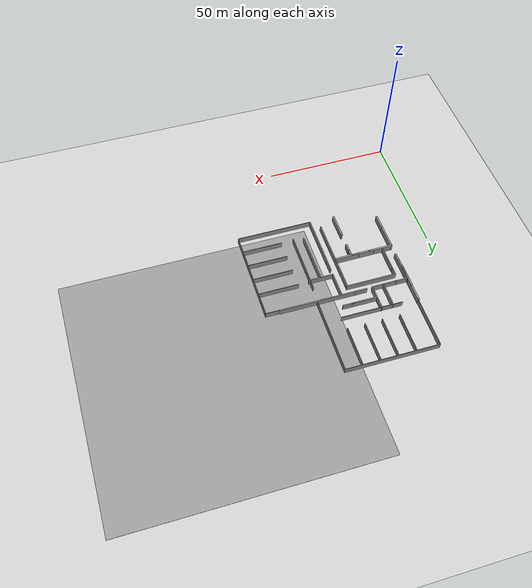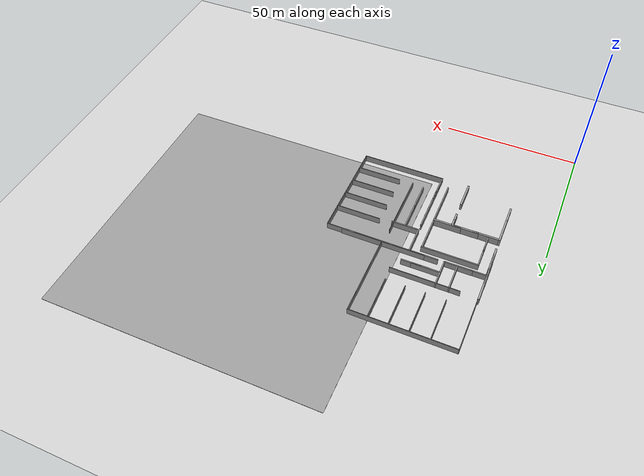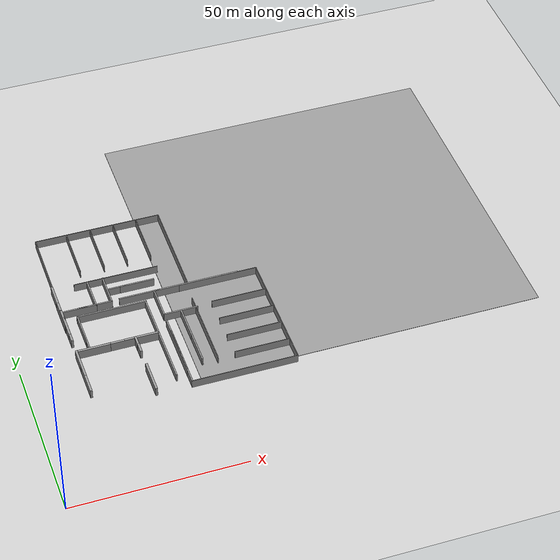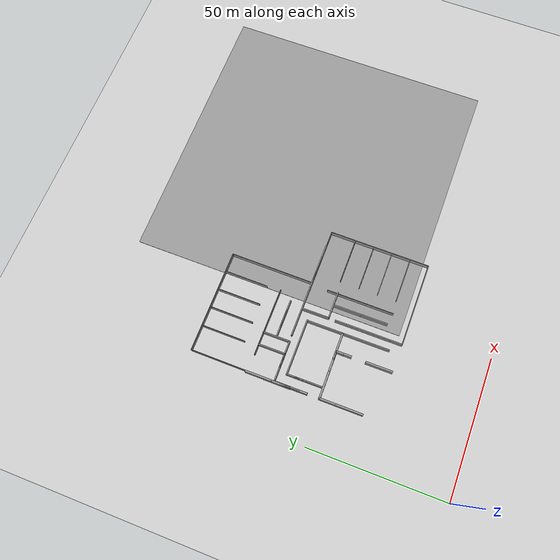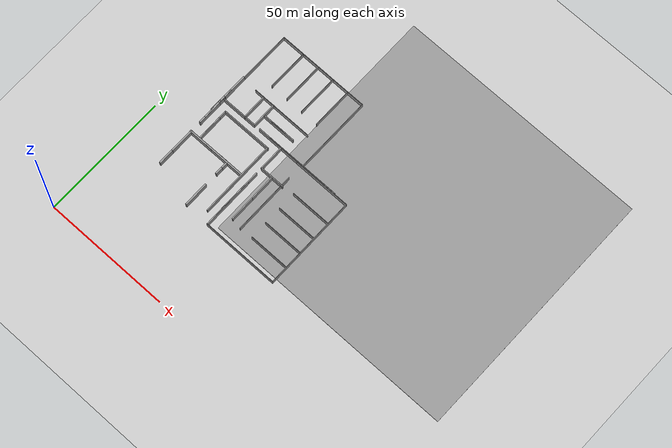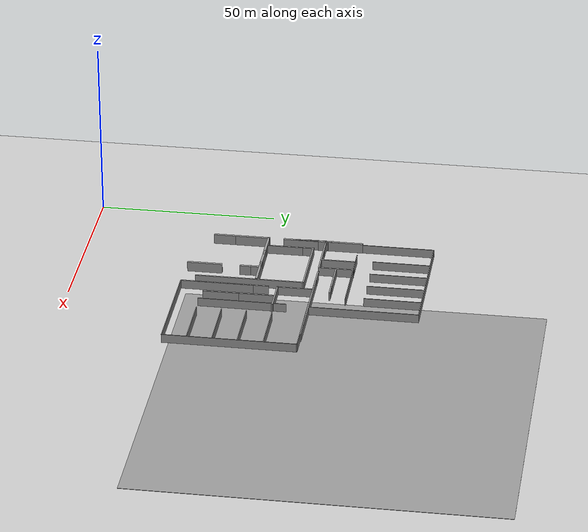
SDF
<sdf version="1.7">
 <world name="default">
  <model name="ground_plane">
   <static>1</static>
   <link name="link">
    <collision name="collision">
     <geometry><plane><normal>0 0 1</normal><size>100 100</size></plane></geometry>
     <surface><friction><ode><mu>100</mu><mu2>50</mu2></ode></friction></surface>
    </collision>
    <visual name="visual">
     <cast_shadows>0</cast_shadows>
     <geometry><plane><normal>0 0 1</normal><size>100 100</size></plane></geometry>
     <material>
      <script><uri>file://media/materials/scripts/gazebo.material</uri><name>Gazebo/Grey</name></script>
     </material>
    </visual>
   </link>
  </model>
  <model name="ground_plane_2">
   <static>1</static>
   <link name="link">
    <collision name="collision">
     <geometry><plane><normal>0 0 1</normal><size>100 100</size></plane></geometry>
     <surface>
      <contact><collide_bitmask>65535</collide_bitmask></contact>
      <friction><ode><mu>100</mu><mu2>50</mu2></ode></friction>
     </surface>
    </collision>
    <visual name="visual">
     <cast_shadows>0</cast_shadows>
     <geometry><plane><normal>0 0 1</normal><size>100 100</size></plane></geometry>
     <material>
      <script><uri>file://media/materials/scripts/gazebo.material</uri><name>Gazebo/Grey</name></script>
     </material>
    </visual>
   </link>
   <pose>96.4085 82.3703 0 0 -0 0</pose>
  </model>
  <model name="grey_wall_hou_clone_clone_3_clone_0_clone_1">
   <link name="link">
    <pose>0 0 1.37589 0 -0 0</pose>
    <inertial>
     <inertia><ixx>0</ixx><ixy>0</ixy><ixz>0</ixz><iyy>0</iyy><iyz>0</iyz><izz>0</izz></inertia>
     <mass>0</mass>
    </inertial>
    <visual name="visual">
     <cast_shadows>0</cast_shadows>
     <geometry><box><size>9.82221 0.642976 2.8</size></box></geometry>
     <material>
      <script>
       <uri>model://grey_wall/materials/scripts</uri>
       <uri>model://grey_wall/materials/textures</uri>
       <name>vrc/grey_wall</name>
      </script>
      <shader type="pixel"><normal_map>__default__</normal_map></shader>
      <ambient>1 1 1 1</ambient>
      <diffuse>1 1 1 1</diffuse>
      <specular>0 0 0 1</specular>
      <emissive>0 0 0 1</emissive>
     </material>
    </visual>
    <collision name="collision">
     <geometry><box><size>9.82221 0.642976 2.8</size></box></geometry>
     <surface>
      <friction>
       <ode><mu>1</mu><mu2>1</mu2><fdir1>0 0 0</fdir1><slip1>0</slip1><slip2>0</slip2></ode>
       <torsional>
        <coefficient>1</coefficient>
        <patch_radius>0</patch_radius>
        <surface_radius>0</surface_radius>
        <use_patch_radius>1</use_patch_radius>
        <ode><slip>0</slip></ode>
       </torsional>
      </friction>
      <bounce><restitution_coefficient>0</restitution_coefficient><threshold>1e+06</threshold></bounce>
      <contact>
       <collide_without_contact>0</collide_without_contact>
       <collide_without_contact_bitmask>1</collide_without_contact_bitmask>
       <collide_bitmask>1</collide_bitmask>
       <ode>
        <soft_cfm>0</soft_cfm>
        <soft_erp>0.2</soft_erp>
        <kp>1e+13</kp>
        <kd>1</kd>
        <max_vel>0.01</max_vel>
        <min_depth>0</min_depth>
       </ode>
       <bullet>
        <split_impulse>1</split_impulse>
        <split_impulse_penetration_threshold>-0.01</split_impulse_penetration_threshold>
        <soft_cfm>0</soft_cfm>
        <soft_erp>0.2</soft_erp>
        <kp>1e+13</kp>
        <kd>1</kd>
       </bullet>
      </contact>
     </surface>
    </collision>
   </link>
   <static>1</static>
   <pose>33.2826 35.5332 0 0 0 -1.56855</pose>
  </model>
  <model name="grey_wall_hou_clone_clone_3_clone_0_clone_1_clone_0">
   <link name="link">
    <pose>0 0 1.37589 0 -0 0</pose>
    <inertial>
     <inertia><ixx>0</ixx><ixy>0</ixy><ixz>0</ixz><iyy>0</iyy><iyz>0</iyz><izz>0</izz></inertia>
     <mass>0</mass>
    </inertial>
    <visual name="visual">
     <cast_shadows>0</cast_shadows>
     <geometry><box><size>9.82221 0.642976 2.8</size></box></geometry>
     <material>
      <script>
       <uri>model://grey_wall/materials/scripts</uri>
       <uri>model://grey_wall/materials/textures</uri>
       <name>vrc/grey_wall</name>
      </script>
      <shader type="pixel"><normal_map>__default__</normal_map></shader>
      <ambient>1 1 1 1</ambient>
      <diffuse>1 1 1 1</diffuse>
      <specular>0 0 0 1</specular>
      <emissive>0 0 0 1</emissive>
     </material>
    </visual>
    <collision name="collision">
     <geometry><box><size>9.82221 0.642976 2.8</size></box></geometry>
     <surface>
      <friction>
       <ode><mu>1</mu><mu2>1</mu2><fdir1>0 0 0</fdir1><slip1>0</slip1><slip2>0</slip2></ode>
       <torsional>
        <coefficient>1</coefficient>
        <patch_radius>0</patch_radius>
        <surface_radius>0</surface_radius>
        <use_patch_radius>1</use_patch_radius>
        <ode><slip>0</slip></ode>
       </torsional>
      </friction>
      <bounce><restitution_coefficient>0</restitution_coefficient><threshold>1e+06</threshold></bounce>
      <contact>
       <collide_without_contact>0</collide_without_contact>
       <collide_without_contact_bitmask>1</collide_without_contact_bitmask>
       <collide_bitmask>1</collide_bitmask>
       <ode>
        <soft_cfm>0</soft_cfm>
        <soft_erp>0.2</soft_erp>
        <kp>1e+13</kp>
        <kd>1</kd>
        <max_vel>0.01</max_vel>
        <min_depth>0</min_depth>
       </ode>
       <bullet>
        <split_impulse>1</split_impulse>
        <split_impulse_penetration_threshold>-0.01</split_impulse_penetration_threshold>
        <soft_cfm>0</soft_cfm>
        <soft_erp>0.2</soft_erp>
        <kp>1e+13</kp>
        <kd>1</kd>
       </bullet>
      </contact>
     </surface>
    </collision>
   </link>
   <static>1</static>
   <pose>16.3465 60.2633 0 0 0 -1.56855</pose>
  </model>
  <model name="grey_wall_hou_clone_clone_3_clone_0_clone_1_clone_2">
   <link name="link">
    <pose>0 0 1.37589 0 -0 0</pose>
    <inertial>
     <inertia><ixx>0</ixx><ixy>0</ixy><ixz>0</ixz><iyy>0</iyy><iyz>0</iyz><izz>0</izz></inertia>
     <mass>0</mass>
    </inertial>
    <visual name="visual">
     <cast_shadows>0</cast_shadows>
     <geometry><box><size>9.82221 0.642976 2.8</size></box></geometry>
     <material>
      <script>
       <uri>model://grey_wall/materials/scripts</uri>
       <uri>model://grey_wall/materials/textures</uri>
       <name>vrc/grey_wall</name>
      </script>
      <shader type="pixel"><normal_map>__default__</normal_map></shader>
      <ambient>1 1 1 1</ambient>
      <diffuse>1 1 1 1</diffuse>
      <specular>0 0 0 1</specular>
      <emissive>0 0 0 1</emissive>
     </material>
    </visual>
    <collision name="collision">
     <geometry><box><size>9.82221 0.642976 2.8</size></box></geometry>
     <surface>
      <friction>
       <ode><mu>1</mu><mu2>1</mu2><fdir1>0 0 0</fdir1><slip1>0</slip1><slip2>0</slip2></ode>
       <torsional>
        <coefficient>1</coefficient>
        <patch_radius>0</patch_radius>
        <surface_radius>0</surface_radius>
        <use_patch_radius>1</use_patch_radius>
        <ode><slip>0</slip></ode>
       </torsional>
      </friction>
      <bounce><restitution_coefficient>0</restitution_coefficient><threshold>1e+06</threshold></bounce>
      <contact>
       <collide_without_contact>0</collide_without_contact>
       <collide_without_contact_bitmask>1</collide_without_contact_bitmask>
       <collide_bitmask>1</collide_bitmask>
       <ode>
        <soft_cfm>0</soft_cfm>
        <soft_erp>0.2</soft_erp>
        <kp>1e+13</kp>
        <kd>1</kd>
        <max_vel>0.01</max_vel>
        <min_depth>0</min_depth>
       </ode>
       <bullet>
        <split_impulse>1</split_impulse>
        <split_impulse_penetration_threshold>-0.01</split_impulse_penetration_threshold>
        <soft_cfm>0</soft_cfm>
        <soft_erp>0.2</soft_erp>
        <kp>1e+13</kp>
        <kd>1</kd>
       </bullet>
      </contact>
     </surface>
    </collision>
   </link>
   <static>1</static>
   <pose>16.3889 46.4515 0 0 0 -1.56855</pose>
  </model>
  <model name="grey_wall_hou_clone_clone_clone_4_clone_clone_0_clone">
   <link name="link">
    <pose>0 0 1.37589 0 -0 0</pose>
    <inertial>
     <inertia><ixx>0</ixx><ixy>0</ixy><ixz>0</ixz><iyy>0</iyy><iyz>0</iyz><izz>0</izz></inertia>
     <mass>0</mass>
    </inertial>
    <visual name="visual">
     <cast_shadows>0</cast_shadows>
     <geometry><box><size>9.82221 0.642976 2.8</size></box></geometry>
     <material>
      <script>
       <uri>model://grey_wall/materials/scripts</uri>
       <uri>model://grey_wall/materials/textures</uri>
       <name>vrc/grey_wall</name>
      </script>
      <shader type="pixel"><normal_map>__default__</normal_map></shader>
      <ambient>1 1 1 1</ambient>
      <diffuse>1 1 1 1</diffuse>
      <specular>0 0 0 1</specular>
      <emissive>0 0 0 1</emissive>
     </material>
    </visual>
    <collision name="collision">
     <geometry><box><size>9.82221 0.642976 2.8</size></box></geometry>
     <surface>
      <friction>
       <ode><mu>1</mu><mu2>1</mu2><fdir1>0 0 0</fdir1><slip1>0</slip1><slip2>0</slip2></ode>
       <torsional>
        <coefficient>1</coefficient>
        <patch_radius>0</patch_radius>
        <surface_radius>0</surface_radius>
        <use_patch_radius>1</use_patch_radius>
        <ode><slip>0</slip></ode>
       </torsional>
      </friction>
      <bounce><restitution_coefficient>0</restitution_coefficient><threshold>1e+06</threshold></bounce>
      <contact>
       <collide_without_contact>0</collide_without_contact>
       <collide_without_contact_bitmask>1</collide_without_contact_bitmask>
       <collide_bitmask>1</collide_bitmask>
       <ode>
        <soft_cfm>0</soft_cfm>
        <soft_erp>0.2</soft_erp>
        <kp>1e+13</kp>
        <kd>1</kd>
        <max_vel>0.01</max_vel>
        <min_depth>0</min_depth>
       </ode>
       <bullet>
        <split_impulse>1</split_impulse>
        <split_impulse_penetration_threshold>-0.01</split_impulse_penetration_threshold>
        <soft_cfm>0</soft_cfm>
        <soft_erp>0.2</soft_erp>
        <kp>1e+13</kp>
        <kd>1</kd>
       </bullet>
      </contact>
     </surface>
    </collision>
   </link>
   <static>1</static>
   <pose>21.103 51.0163 0 0 -0 0</pose>
  </model>
  <model name="grey_wall_hou_clone_clone_clone_4_clone_clone_0_clone_0">
   <link name="link">
    <pose>0 0 1.37589 0 -0 0</pose>
    <inertial>
     <inertia><ixx>0</ixx><ixy>0</ixy><ixz>0</ixz><iyy>0</iyy><iyz>0</iyz><izz>0</izz></inertia>
     <mass>0</mass>
    </inertial>
    <visual name="visual">
     <cast_shadows>0</cast_shadows>
     <geometry><box><size>9.82221 0.642976 2.8</size></box></geometry>
     <material>
      <script>
       <uri>model://grey_wall/materials/scripts</uri>
       <uri>model://grey_wall/materials/textures</uri>
       <name>vrc/grey_wall</name>
      </script>
      <shader type="pixel"><normal_map>__default__</normal_map></shader>
      <ambient>1 1 1 1</ambient>
      <diffuse>1 1 1 1</diffuse>
      <specular>0 0 0 1</specular>
      <emissive>0 0 0 1</emissive>
     </material>
    </visual>
    <collision name="collision">
     <geometry><box><size>9.82221 0.642976 2.8</size></box></geometry>
     <surface>
      <friction>
       <ode><mu>1</mu><mu2>1</mu2><fdir1>0 0 0</fdir1><slip1>0</slip1><slip2>0</slip2></ode>
       <torsional>
        <coefficient>1</coefficient>
        <patch_radius>0</patch_radius>
        <surface_radius>0</surface_radius>
        <use_patch_radius>1</use_patch_radius>
        <ode><slip>0</slip></ode>
       </torsional>
      </friction>
      <bounce><restitution_coefficient>0</restitution_coefficient><threshold>1e+06</threshold></bounce>
      <contact>
       <collide_without_contact>0</collide_without_contact>
       <collide_without_contact_bitmask>1</collide_without_contact_bitmask>
       <collide_bitmask>1</collide_bitmask>
       <ode>
        <soft_cfm>0</soft_cfm>
        <soft_erp>0.2</soft_erp>
        <kp>1e+13</kp>
        <kd>1</kd>
        <max_vel>0.01</max_vel>
        <min_depth>0</min_depth>
       </ode>
       <bullet>
        <split_impulse>1</split_impulse>
        <split_impulse_penetration_threshold>-0.01</split_impulse_penetration_threshold>
        <soft_cfm>0</soft_cfm>
        <soft_erp>0.2</soft_erp>
        <kp>1e+13</kp>
        <kd>1</kd>
       </bullet>
      </contact>
     </surface>
    </collision>
   </link>
   <static>1</static>
   <pose>28.6481 51.0553 0 0 -0 0</pose>
  </model>
  <model name="grey_wall_short_clone_0_clone_clone_clone">
   <link name="link">
    <pose>0 0 1.37589 0 -0 0</pose>
    <inertial>
     <inertia><ixx>0</ixx><ixy>0</ixy><ixz>0</ixz><iyy>0</iyy><iyz>0</iyz><izz>0</izz></inertia>
     <mass>0</mass>
    </inertial>
    <visual name="visual">
     <cast_shadows>0</cast_shadows>
     <geometry><box><size>3.01651 0.642976 2.8</size></box></geometry>
     <material>
      <script>
       <uri>model://grey_wall/materials/scripts</uri>
       <uri>model://grey_wall/materials/textures</uri>
       <name>vrc/grey_wall</name>
      </script>
      <shader type="pixel"><normal_map>__default__</normal_map></shader>
      <ambient>1 1 1 1</ambient>
      <diffuse>1 1 1 1</diffuse>
      <specular>0 0 0 1</specular>
      <emissive>0 0 0 1</emissive>
     </material>
    </visual>
    <collision name="collision">
     <geometry><box><size>3.01651 0.642976 2.8</size></box></geometry>
     <surface>
      <friction>
       <ode><mu>1</mu><mu2>1</mu2><fdir1>0 0 0</fdir1><slip1>0</slip1><slip2>0</slip2></ode>
       <torsional>
        <coefficient>1</coefficient>
        <patch_radius>0</patch_radius>
        <surface_radius>0</surface_radius>
        <use_patch_radius>1</use_patch_radius>
        <ode><slip>0</slip></ode>
       </torsional>
      </friction>
      <bounce><restitution_coefficient>0</restitution_coefficient><threshold>1e+06</threshold></bounce>
      <contact>
       <collide_without_contact>0</collide_without_contact>
       <collide_without_contact_bitmask>1</collide_without_contact_bitmask>
       <collide_bitmask>1</collide_bitmask>
       <ode>
        <soft_cfm>0</soft_cfm>
        <soft_erp>0.2</soft_erp>
        <kp>1e+13</kp>
        <kd>1</kd>
        <max_vel>0.01</max_vel>
        <min_depth>0</min_depth>
       </ode>
       <bullet>
        <split_impulse>1</split_impulse>
        <split_impulse_penetration_threshold>-0.01</split_impulse_penetration_threshold>
        <soft_cfm>0</soft_cfm>
        <soft_erp>0.2</soft_erp>
        <kp>1e+13</kp>
        <kd>1</kd>
       </bullet>
      </contact>
     </surface>
    </collision>
   </link>
   <static>1</static>
   <pose>33.2477 49.8517 0 0 0 -1.57149</pose>
  </model>
  <model name="grey_wall_short_clone_0_clone_clone_clone_clone">
   <link name="link">
    <pose>0 0 1.37589 0 -0 0</pose>
    <inertial>
     <inertia><ixx>0</ixx><ixy>0</ixy><ixz>0</ixz><iyy>0</iyy><iyz>0</iyz><izz>0</izz></inertia>
     <mass>0</mass>
    </inertial>
    <visual name="visual">
     <cast_shadows>0</cast_shadows>
     <geometry><box><size>3.01651 0.642976 2.8</size></box></geometry>
     <material>
      <script>
       <uri>model://grey_wall/materials/scripts</uri>
       <uri>model://grey_wall/materials/textures</uri>
       <name>vrc/grey_wall</name>
      </script>
      <shader type="pixel"><normal_map>__default__</normal_map></shader>
      <ambient>1 1 1 1</ambient>
      <diffuse>1 1 1 1</diffuse>
      <specular>0 0 0 1</specular>
      <emissive>0 0 0 1</emissive>
     </material>
    </visual>
    <collision name="collision">
     <geometry><box><size>3.01651 0.642976 2.8</size></box></geometry>
     <surface>
      <friction>
       <ode><mu>1</mu><mu2>1</mu2><fdir1>0 0 0</fdir1><slip1>0</slip1><slip2>0</slip2></ode>
       <torsional>
        <coefficient>1</coefficient>
        <patch_radius>0</patch_radius>
        <surface_radius>0</surface_radius>
        <use_patch_radius>1</use_patch_radius>
        <ode><slip>0</slip></ode>
       </torsional>
      </friction>
      <bounce><restitution_coefficient>0</restitution_coefficient><threshold>1e+06</threshold></bounce>
      <contact>
       <collide_without_contact>0</collide_without_contact>
       <collide_without_contact_bitmask>1</collide_without_contact_bitmask>
       <collide_bitmask>1</collide_bitmask>
       <ode>
        <soft_cfm>0</soft_cfm>
        <soft_erp>0.2</soft_erp>
        <kp>1e+13</kp>
        <kd>1</kd>
        <max_vel>0.01</max_vel>
        <min_depth>0</min_depth>
       </ode>
       <bullet>
        <split_impulse>1</split_impulse>
        <split_impulse_penetration_threshold>-0.01</split_impulse_penetration_threshold>
        <soft_cfm>0</soft_cfm>
        <soft_erp>0.2</soft_erp>
        <kp>1e+13</kp>
        <kd>1</kd>
       </bullet>
      </contact>
     </surface>
    </collision>
   </link>
   <static>1</static>
   <pose>33.2766 46.9831 0 0 0 -1.57149</pose>
  </model>
  <model name="grey_wall_hou_clone_clone_3_clone_0_clone_1_clone_2_clone_clone">
   <link name="link">
    <pose>0 0 1.37589 0 -0 0</pose>
    <inertial>
     <inertia><ixx>0</ixx><ixy>0</ixy><ixz>0</ixz><iyy>0</iyy><iyz>0</iyz><izz>0</izz></inertia>
     <mass>0</mass>
    </inertial>
    <visual name="visual">
     <cast_shadows>0</cast_shadows>
     <geometry><box><size>9.82221 0.642976 2.8</size></box></geometry>
     <material>
      <script>
       <uri>model://grey_wall/materials/scripts</uri>
       <uri>model://grey_wall/materials/textures</uri>
       <name>vrc/grey_wall</name>
      </script>
      <shader type="pixel"><normal_map>__default__</normal_map></shader>
      <ambient>1 1 1 1</ambient>
      <diffuse>1 1 1 1</diffuse>
      <specular>0 0 0 1</specular>
      <emissive>0 0 0 1</emissive>
     </material>
    </visual>
    <collision name="collision">
     <geometry><box><size>9.82221 0.642976 2.8</size></box></geometry>
     <surface>
      <friction>
       <ode><mu>1</mu><mu2>1</mu2><fdir1>0 0 0</fdir1><slip1>0</slip1><slip2>0</slip2></ode>
       <torsional>
        <coefficient>1</coefficient>
        <patch_radius>0</patch_radius>
        <surface_radius>0</surface_radius>
        <use_patch_radius>1</use_patch_radius>
        <ode><slip>0</slip></ode>
       </torsional>
      </friction>
      <bounce><restitution_coefficient>0</restitution_coefficient><threshold>1e+06</threshold></bounce>
      <contact>
       <collide_without_contact>0</collide_without_contact>
       <collide_without_contact_bitmask>1</collide_without_contact_bitmask>
       <collide_bitmask>1</collide_bitmask>
       <ode>
        <soft_cfm>0</soft_cfm>
        <soft_erp>0.2</soft_erp>
        <kp>1e+13</kp>
        <kd>1</kd>
        <max_vel>0.01</max_vel>
        <min_depth>0</min_depth>
       </ode>
       <bullet>
        <split_impulse>1</split_impulse>
        <split_impulse_penetration_threshold>-0.01</split_impulse_penetration_threshold>
        <soft_cfm>0</soft_cfm>
        <soft_erp>0.2</soft_erp>
        <kp>1e+13</kp>
        <kd>1</kd>
       </bullet>
      </contact>
     </surface>
    </collision>
   </link>
   <static>1</static>
   <pose>16.3875 40.3418 0 0 0 -1.56855</pose>
  </model>
  <model name="area7_clone">
   <pose>23.032 83.9467 0 0 -0 3.13818</pose>
   <link name="Wall_12">
    <collision name="Wall_12_Collision">
     <geometry><box><size>30.5 0.2 2.5</size></box></geometry>
     <pose>0 0 1.25 0 -0 0</pose>
    </collision>
    <visual name="Wall_12_Visual">
     <pose>0 0 1.25 0 -0 0</pose>
     <geometry><box><size>30.5 0.2 2.5</size></box></geometry>
     <material>
      <script><uri>file://media/materials/scripts/gazebo.material</uri><name>Gazebo/Grey</name></script>
      <ambient>1 1 1 1</ambient>
     </material>
     <meta><layer>0</layer></meta>
    </visual>
    <pose>-30.2634 1.15551 0 0 -0 -1.5708</pose>
   </link>
   <link name="Wall_14">
    <collision name="Wall_14_Collision">
     <geometry><box><size>37.0498 0.2 2.5</size></box></geometry>
     <pose>0 0 1.25 0 -0 0</pose>
    </collision>
    <visual name="Wall_14_Visual">
     <pose>0 0 1.25 0 -0 0</pose>
     <geometry><box><size>37.0498 0.2 2.5</size></box></geometry>
     <material>
      <script><uri>file://media/materials/scripts/gazebo.material</uri><name>Gazebo/Grey</name></script>
      <ambient>1 1 1 1</ambient>
     </material>
     <meta><layer>0</layer></meta>
    </visual>
    <pose>-11.8146 -14.0155 0 0 -0 0</pose>
   </link>
   <link name="Wall_16">
    <collision name="Wall_16_Collision">
     <geometry><box><size>23 0.2 2.5</size></box></geometry>
     <pose>0 0 1.25 0 -0 0</pose>
    </collision>
    <visual name="Wall_16_Visual">
     <pose>0 0 1.25 0 -0 0</pose>
     <geometry><box><size>23 0.2 2.5</size></box></geometry>
     <material>
      <script><uri>file://media/materials/scripts/gazebo.material</uri><name>Gazebo/Grey</name></script>
      <ambient>1 1 1 1</ambient>
     </material>
     <meta><layer>0</layer></meta>
    </visual>
    <pose>6.61045 -2.61551 0 0 -0 1.5708</pose>
   </link>
   <link name="Wall_20">
    <collision name="Wall_20_Collision">
     <geometry><box><size>16 0.2 2.5</size></box></geometry>
     <pose>0 0 1.25 0 -0 0</pose>
    </collision>
    <visual name="Wall_20_Visual">
     <pose>0 0 1.25 0 -0 0</pose>
     <geometry><box><size>16 0.2 2.5</size></box></geometry>
     <material>
      <script><uri>file://media/materials/scripts/gazebo.material</uri><name>Gazebo/Grey</name></script>
      <ambient>1 1 1 1</ambient>
     </material>
     <meta><layer>0</layer></meta>
    </visual>
    <pose>-23.4471 -6.04432 0 0 -0 1.5708</pose>
   </link>
   <link name="Wall_22">
    <collision name="Wall_22_Collision">
     <geometry><box><size>16.0502 0.2 2.5</size></box></geometry>
     <pose>0 0 1.25 0 -0 0</pose>
    </collision>
    <visual name="Wall_22_Visual">
     <pose>0 0 1.25 0 -0 0</pose>
     <geometry><box><size>16.0502 0.2 2.5</size></box></geometry>
     <material>
      <script><uri>file://media/materials/scripts/gazebo.material</uri><name>Gazebo/Grey</name></script>
      <ambient>1 1 1 1</ambient>
     </material>
     <meta><layer>0</layer></meta>
    </visual>
    <pose>-16.5135 -6.02351 0 0 -0 1.5708</pose>
   </link>
   <link name="Wall_24">
    <collision name="Wall_24_Collision">
     <geometry><box><size>16.0502 0.2 2.5</size></box></geometry>
     <pose>0 0 1.25 0 -0 0</pose>
    </collision>
    <visual name="Wall_24_Visual">
     <pose>0 0 1.25 0 -0 0</pose>
     <geometry><box><size>16.0502 0.2 2.5</size></box></geometry>
     <material>
      <script><uri>file://media/materials/scripts/gazebo.material</uri><name>Gazebo/Grey</name></script>
      <ambient>1 1 1 1</ambient>
     </material>
     <meta><layer>0</layer></meta>
    </visual>
    <pose>-9.62755 -6.02351 0 0 -0 1.5708</pose>
   </link>
   <link name="Wall_26">
    <collision name="Wall_26_Collision">
     <geometry><box><size>16.0497 0.2 2.5</size></box></geometry>
     <pose>0 0 1.25 0 -0 0</pose>
    </collision>
    <visual name="Wall_26_Visual">
     <pose>0 0 1.25 0 -0 0</pose>
     <geometry><box><size>16.0497 0.2 2.5</size></box></geometry>
     <material>
      <script><uri>file://media/materials/scripts/gazebo.material</uri><name>Gazebo/Grey</name></script>
      <ambient>1 1 1 1</ambient>
     </material>
     <meta><layer>0</layer></meta>
    </visual>
    <pose>-2.55655 -5.97651 0 0 -0 1.5708</pose>
   </link>
   <link name="Wall_28">
    <collision name="Wall_28_Collision">
     <geometry><box><size>24.55 0.2 2.5</size></box></geometry>
     <pose>0 0 1.25 0 -0 0</pose>
    </collision>
    <visual name="Wall_28_Visual">
     <pose>0 0 1.25 0 -0 0</pose>
     <geometry><box><size>24.55 0.2 2.5</size></box></geometry>
     <material>
      <script><uri>file://media/materials/scripts/gazebo.material</uri><name>Gazebo/Grey</name></script>
      <ambient>1 1 1 1</ambient>
     </material>
     <meta><layer>0</layer></meta>
    </visual>
    <pose>-11.6836 6.93349 0 0 -0 3.14159</pose>
   </link>
   <static>1</static>
  </model>
  <model name="30m_0.4_clone_0">
   <pose>52.9643 74.2252 0 0 -0 0</pose>
   <link name="Wall_44">
    <collision name="Wall_44_Collision">
     <geometry><box><size>30.25 0.4 2.5</size></box></geometry>
     <pose>0 0 1.25 0 -0 0</pose>
    </collision>
    <visual name="Wall_44_Visual">
     <pose>0 0 1.25 0 -0 0</pose>
     <geometry><box><size>30.25 0.4 2.5</size></box></geometry>
     <material>
      <script><uri>file://media/materials/scripts/gazebo.material</uri><name>Gazebo/Grey</name></script>
      <ambient>1 1 1 1</ambient>
     </material>
     <meta><layer>0</layer></meta>
    </visual>
    <pose>0 -6.73551 0 0 -0 0</pose>
   </link>
   <static>1</static>
  </model>
  <model name="grey_wall_hou_clone_clone_3_clone_0_clone_1_clone_0_clone">
   <link name="link">
    <pose>0 0 1.37589 0 -0 0</pose>
    <inertial>
     <inertia><ixx>0</ixx><ixy>0</ixy><ixz>0</ixz><iyy>0</iyy><iyz>0</iyz><izz>0</izz></inertia>
     <mass>0</mass>
    </inertial>
    <visual name="visual">
     <cast_shadows>0</cast_shadows>
     <geometry><box><size>9.82221 0.642976 2.8</size></box></geometry>
     <material>
      <script>
       <uri>model://grey_wall/materials/scripts</uri>
       <uri>model://grey_wall/materials/textures</uri>
       <name>vrc/grey_wall</name>
      </script>
      <shader type="pixel"><normal_map>__default__</normal_map></shader>
      <ambient>1 1 1 1</ambient>
      <diffuse>1 1 1 1</diffuse>
      <specular>0 0 0 1</specular>
      <emissive>0 0 0 1</emissive>
     </material>
    </visual>
    <collision name="collision">
     <geometry><box><size>9.82221 0.642976 2.8</size></box></geometry>
     <surface>
      <friction>
       <ode><mu>1</mu><mu2>1</mu2><fdir1>0 0 0</fdir1><slip1>0</slip1><slip2>0</slip2></ode>
       <torsional>
        <coefficient>1</coefficient>
        <patch_radius>0</patch_radius>
        <surface_radius>0</surface_radius>
        <use_patch_radius>1</use_patch_radius>
        <ode><slip>0</slip></ode>
       </torsional>
      </friction>
      <bounce><restitution_coefficient>0</restitution_coefficient><threshold>1e+06</threshold></bounce>
      <contact>
       <collide_without_contact>0</collide_without_contact>
       <collide_without_contact_bitmask>1</collide_without_contact_bitmask>
       <collide_bitmask>1</collide_bitmask>
       <ode>
        <soft_cfm>0</soft_cfm>
        <soft_erp>0.2</soft_erp>
        <kp>1e+13</kp>
        <kd>1</kd>
        <max_vel>0.01</max_vel>
        <min_depth>0</min_depth>
       </ode>
       <bullet>
        <split_impulse>1</split_impulse>
        <split_impulse_penetration_threshold>-0.01</split_impulse_penetration_threshold>
        <soft_cfm>0</soft_cfm>
        <soft_erp>0.2</soft_erp>
        <kp>1e+13</kp>
        <kd>1</kd>
       </bullet>
      </contact>
     </surface>
    </collision>
   </link>
   <static>1</static>
   <pose>16.3324 62.9166 0 0 0 -1.56855</pose>
  </model>
  <model name="10m_0.4">
   <pose>41.429 62.3503 0 0 -0 1.57508</pose>
   <link name="Wall_0">
    <collision name="Wall_0_Collision">
     <geometry><box><size>10 0.4 2.5</size></box></geometry>
     <pose>0 0 1.25 0 -0 0</pose>
    </collision>
    <visual name="Wall_0_Visual">
     <pose>0 0 1.25 0 -0 0</pose>
     <geometry><box><size>10 0.4 2.5</size></box></geometry>
     <material>
      <script><uri>file://media/materials/scripts/gazebo.material</uri><name>Gazebo/Grey</name></script>
      <ambient>1 1 1 1</ambient>
     </material>
     <meta><layer>0</layer></meta>
    </visual>
    <pose>-0 -1.915 0 0 -0 0</pose>
   </link>
   <static>1</static>
  </model>
  <model name="10m_0.4_clone">
   <pose>24.4003 72.1372 0 0 -0 1.57508</pose>
   <link name="Wall_0">
    <collision name="Wall_0_Collision">
     <geometry><box><size>10 0.4 2.5</size></box></geometry>
     <pose>0 0 1.25 0 -0 0</pose>
    </collision>
    <visual name="Wall_0_Visual">
     <pose>0 0 1.25 0 -0 0</pose>
     <geometry><box><size>10 0.4 2.5</size></box></geometry>
     <material>
      <script><uri>file://media/materials/scripts/gazebo.material</uri><name>Gazebo/Grey</name></script>
      <ambient>1 1 1 1</ambient>
     </material>
     <meta><layer>0</layer></meta>
    </visual>
    <pose>-0 -1.915 0 0 -0 0</pose>
   </link>
   <static>1</static>
  </model>
  <model name="grey_wall_hou_clone_clone_3_clone_0_clone_1_clone_0_clone_5">
   <link name="link">
    <pose>0 0 1.37589 0 -0 0</pose>
    <inertial>
     <inertia><ixx>0</ixx><ixy>0</ixy><ixz>0</ixz><iyy>0</iyy><iyz>0</iyz><izz>0</izz></inertia>
     <mass>0</mass>
    </inertial>
    <visual name="visual">
     <cast_shadows>0</cast_shadows>
     <geometry><box><size>9.82221 0.642976 2.8</size></box></geometry>
     <material>
      <script>
       <uri>model://grey_wall/materials/scripts</uri>
       <uri>model://grey_wall/materials/textures</uri>
       <name>vrc/grey_wall</name>
      </script>
      <shader type="pixel"><normal_map>__default__</normal_map></shader>
      <ambient>1 1 1 1</ambient>
      <diffuse>1 1 1 1</diffuse>
      <specular>0 0 0 1</specular>
      <emissive>0 0 0 1</emissive>
     </material>
    </visual>
    <collision name="collision">
     <geometry><box><size>9.82221 0.642976 2.8</size></box></geometry>
     <surface>
      <friction>
       <ode><mu>1</mu><mu2>1</mu2><fdir1>0 0 0</fdir1><slip1>0</slip1><slip2>0</slip2></ode>
       <torsional>
        <coefficient>1</coefficient>
        <patch_radius>0</patch_radius>
        <surface_radius>0</surface_radius>
        <use_patch_radius>1</use_patch_radius>
        <ode><slip>0</slip></ode>
       </torsional>
      </friction>
      <bounce><restitution_coefficient>0</restitution_coefficient><threshold>1e+06</threshold></bounce>
      <contact>
       <collide_without_contact>0</collide_without_contact>
       <collide_without_contact_bitmask>1</collide_without_contact_bitmask>
       <collide_bitmask>1</collide_bitmask>
       <ode>
        <soft_cfm>0</soft_cfm>
        <soft_erp>0.2</soft_erp>
        <kp>1e+13</kp>
        <kd>1</kd>
        <max_vel>0.01</max_vel>
        <min_depth>0</min_depth>
       </ode>
       <bullet>
        <split_impulse>1</split_impulse>
        <split_impulse_penetration_threshold>-0.01</split_impulse_penetration_threshold>
        <soft_cfm>0</soft_cfm>
        <soft_erp>0.2</soft_erp>
        <kp>1e+13</kp>
        <kd>1</kd>
       </bullet>
      </contact>
     </surface>
    </collision>
   </link>
   <static>1</static>
   <pose>16.1715 66.3438 0 0 0 -1.56855</pose>
  </model>
  <model name="area7_clone_0">
   <pose>59.5452 60.7497 0 0 -0 1.5705</pose>
   <link name="Wall_12">
    <collision name="Wall_12_Collision">
     <geometry><box><size>30.5 0.2 2.5</size></box></geometry>
     <pose>0 0 1.25 0 -0 0</pose>
    </collision>
    <visual name="Wall_12_Visual">
     <pose>0 0 1.25 0 -0 0</pose>
     <geometry><box><size>30.5 0.2 2.5</size></box></geometry>
     <material>
      <script><uri>file://media/materials/scripts/gazebo.material</uri><name>Gazebo/Grey</name></script>
      <ambient>1 1 1 1</ambient>
     </material>
     <meta><layer>0</layer></meta>
    </visual>
    <pose>-30.2634 1.15551 0 0 -0 -1.5708</pose>
   </link>
   <link name="Wall_14">
    <collision name="Wall_14_Collision">
     <geometry><box><size>37.0498 0.2 2.5</size></box></geometry>
     <pose>0 0 1.25 0 -0 0</pose>
    </collision>
    <visual name="Wall_14_Visual">
     <pose>0 0 1.25 0 -0 0</pose>
     <geometry><box><size>37.0498 0.2 2.5</size></box></geometry>
     <material>
      <script><uri>file://media/materials/scripts/gazebo.material</uri><name>Gazebo/Grey</name></script>
      <ambient>1 1 1 1</ambient>
     </material>
     <meta><layer>0</layer></meta>
    </visual>
    <pose>-11.8146 -14.0155 0 0 -0 0</pose>
   </link>
   <link name="Wall_16">
    <collision name="Wall_16_Collision">
     <geometry><box><size>23 0.2 2.5</size></box></geometry>
     <pose>0 0 1.25 0 -0 0</pose>
    </collision>
    <visual name="Wall_16_Visual">
     <pose>0 0 1.25 0 -0 0</pose>
     <geometry><box><size>23 0.2 2.5</size></box></geometry>
     <material>
      <script><uri>file://media/materials/scripts/gazebo.material</uri><name>Gazebo/Grey</name></script>
      <ambient>1 1 1 1</ambient>
     </material>
     <meta><layer>0</layer></meta>
    </visual>
    <pose>6.61045 -2.61551 0 0 -0 1.5708</pose>
   </link>
   <link name="Wall_20">
    <collision name="Wall_20_Collision">
     <geometry><box><size>16 0.2 2.5</size></box></geometry>
     <pose>0 0 1.25 0 -0 0</pose>
    </collision>
    <visual name="Wall_20_Visual">
     <pose>0 0 1.25 0 -0 0</pose>
     <geometry><box><size>16 0.2 2.5</size></box></geometry>
     <material>
      <script><uri>file://media/materials/scripts/gazebo.material</uri><name>Gazebo/Grey</name></script>
      <ambient>1 1 1 1</ambient>
     </material>
     <meta><layer>0</layer></meta>
    </visual>
    <pose>-23.4471 -6.04432 0 0 -0 1.5708</pose>
   </link>
   <link name="Wall_22">
    <collision name="Wall_22_Collision">
     <geometry><box><size>16.0502 0.2 2.5</size></box></geometry>
     <pose>0 0 1.25 0 -0 0</pose>
    </collision>
    <visual name="Wall_22_Visual">
     <pose>0 0 1.25 0 -0 0</pose>
     <geometry><box><size>16.0502 0.2 2.5</size></box></geometry>
     <material>
      <script><uri>file://media/materials/scripts/gazebo.material</uri><name>Gazebo/Grey</name></script>
      <ambient>1 1 1 1</ambient>
     </material>
     <meta><layer>0</layer></meta>
    </visual>
    <pose>-16.5135 -6.02351 0 0 -0 1.5708</pose>
   </link>
   <link name="Wall_24">
    <collision name="Wall_24_Collision">
     <geometry><box><size>16.0502 0.2 2.5</size></box></geometry>
     <pose>0 0 1.25 0 -0 0</pose>
    </collision>
    <visual name="Wall_24_Visual">
     <pose>0 0 1.25 0 -0 0</pose>
     <geometry><box><size>16.0502 0.2 2.5</size></box></geometry>
     <material>
      <script><uri>file://media/materials/scripts/gazebo.material</uri><name>Gazebo/Grey</name></script>
      <ambient>1 1 1 1</ambient>
     </material>
     <meta><layer>0</layer></meta>
    </visual>
    <pose>-9.62755 -6.02351 0 0 -0 1.5708</pose>
   </link>
   <link name="Wall_26">
    <collision name="Wall_26_Collision">
     <geometry><box><size>16.0497 0.2 2.5</size></box></geometry>
     <pose>0 0 1.25 0 -0 0</pose>
    </collision>
    <visual name="Wall_26_Visual">
     <pose>0 0 1.25 0 -0 0</pose>
     <geometry><box><size>16.0497 0.2 2.5</size></box></geometry>
     <material>
      <script><uri>file://media/materials/scripts/gazebo.material</uri><name>Gazebo/Grey</name></script>
      <ambient>1 1 1 1</ambient>
     </material>
     <meta><layer>0</layer></meta>
    </visual>
    <pose>-2.55655 -5.97651 0 0 -0 1.5708</pose>
   </link>
   <link name="Wall_28">
    <collision name="Wall_28_Collision">
     <geometry><box><size>24.55 0.2 2.5</size></box></geometry>
     <pose>0 0 1.25 0 -0 0</pose>
    </collision>
    <visual name="Wall_28_Visual">
     <pose>0 0 1.25 0 -0 0</pose>
     <geometry><box><size>24.55 0.2 2.5</size></box></geometry>
     <material>
      <script><uri>file://media/materials/scripts/gazebo.material</uri><name>Gazebo/Grey</name></script>
      <ambient>1 1 1 1</ambient>
     </material>
     <meta><layer>0</layer></meta>
    </visual>
    <pose>-11.6836 6.93349 0 0 -0 3.14159</pose>
   </link>
   <static>1</static>
  </model>
  <model name="20m_0.4">
   <pose>30.0351 66.5047 0 0 -0 0</pose>
   <link name="Wall_2">
    <collision name="Wall_2_Collision">
     <geometry><box><size>20.25 0.4 2.5</size></box></geometry>
     <pose>0 0 1.25 0 -0 0</pose>
    </collision>
    <visual name="Wall_2_Visual">
     <pose>0 0 1.25 0 -0 0</pose>
     <geometry><box><size>20.25 0.4 2.5</size></box></geometry>
     <material>
      <script><uri>file://media/materials/scripts/gazebo.material</uri><name>Gazebo/Grey</name></script>
      <ambient>1 1 1 1</ambient>
     </material>
     <meta><layer>0</layer></meta>
    </visual>
    <pose>-0 -2.255 0 0 -0 0</pose>
   </link>
   <static>1</static>
  </model>
  <model name="10m_0.4_clone_clone">
   <pose>18.2503 59.2862 0 0 -0 1.57508</pose>
   <link name="Wall_0">
    <collision name="Wall_0_Collision">
     <geometry><box><size>10 0.4 2.5</size></box></geometry>
     <pose>0 0 1.25 0 -0 0</pose>
    </collision>
    <visual name="Wall_0_Visual">
     <pose>0 0 1.25 0 -0 0</pose>
     <geometry><box><size>10 0.4 2.5</size></box></geometry>
     <material>
      <script><uri>file://media/materials/scripts/gazebo.material</uri><name>Gazebo/Grey</name></script>
      <ambient>1 1 1 1</ambient>
     </material>
     <meta><layer>0</layer></meta>
    </visual>
    <pose>-0 -1.915 0 0 -0 0</pose>
   </link>
   <static>1</static>
  </model>
  <model name="10m_0.4_clone_clone_0">
   <pose>18.2793 56.2743 0 0 -0 1.57508</pose>
   <link name="Wall_0">
    <collision name="Wall_0_Collision">
     <geometry><box><size>10 0.4 2.5</size></box></geometry>
     <pose>0 0 1.25 0 -0 0</pose>
    </collision>
    <visual name="Wall_0_Visual">
     <pose>0 0 1.25 0 -0 0</pose>
     <geometry><box><size>10 0.4 2.5</size></box></geometry>
     <material>
      <script><uri>file://media/materials/scripts/gazebo.material</uri><name>Gazebo/Grey</name></script>
      <ambient>1 1 1 1</ambient>
     </material>
     <meta><layer>0</layer></meta>
    </visual>
    <pose>-0 -1.915 0 0 -0 0</pose>
   </link>
   <static>1</static>
  </model>
  <model name="20m_0.4_clone_clone_clone">
   <pose>45.5776 44.9751 0 0 0 -1.56998</pose>
   <link name="Wall_2">
    <collision name="Wall_2_Collision">
     <geometry><box><size>20.25 0.4 2.5</size></box></geometry>
     <pose>0 0 1.25 0 -0 0</pose>
    </collision>
    <visual name="Wall_2_Visual">
     <pose>0 0 1.25 0 -0 0</pose>
     <geometry><box><size>20.25 0.4 2.5</size></box></geometry>
     <material>
      <script><uri>file://media/materials/scripts/gazebo.material</uri><name>Gazebo/Grey</name></script>
      <ambient>1 1 1 1</ambient>
     </material>
     <meta><layer>0</layer></meta>
    </visual>
    <pose>-0 -2.255 0 0 -0 0</pose>
   </link>
   <static>1</static>
  </model>
  <model name="30m_0.4_clone_3_clone_clone">
   <pose>46.6529 49.1378 0 0 0 -1.56734</pose>
   <link name="Wall_44">
    <collision name="Wall_44_Collision">
     <geometry><box><size>30.25 0.4 2.5</size></box></geometry>
     <pose>0 0 1.25 0 -0 0</pose>
    </collision>
    <visual name="Wall_44_Visual">
     <pose>0 0 1.25 0 -0 0</pose>
     <geometry><box><size>30.25 0.4 2.5</size></box></geometry>
     <material>
      <script><uri>file://media/materials/scripts/gazebo.material</uri><name>Gazebo/Grey</name></script>
      <ambient>1 1 1 1</ambient>
     </material>
     <meta><layer>0</layer></meta>
    </visual>
    <pose>0 -6.73551 0 0 -0 0</pose>
   </link>
   <static>1</static>
  </model>
  <model name="10m_0.4_0">
   <pose>48.2403 59.4657 0 0 -0 0</pose>
   <link name="Wall_0">
    <collision name="Wall_0_Collision">
     <geometry><box><size>10 0.4 2.5</size></box></geometry>
     <pose>0 0 1.25 0 -0 0</pose>
    </collision>
    <visual name="Wall_0_Visual">
     <pose>0 0 1.25 0 -0 0</pose>
     <geometry><box><size>10 0.4 2.5</size></box></geometry>
     <material>
      <script><uri>file://media/materials/scripts/gazebo.material</uri><name>Gazebo/Grey</name></script>
      <ambient>1 1 1 1</ambient>
     </material>
     <meta><layer>0</layer></meta>
    </visual>
    <pose>-0 -1.915 0 0 -0 0</pose>
   </link>
   <static>1</static>
  </model>
  <model name="20m_0.4_clone_clone_clone_0">
   <pose>45.6115 40.6951 0 0 0 -1.56998</pose>
   <link name="Wall_2">
    <collision name="Wall_2_Collision">
     <geometry><box><size>20.25 0.4 2.5</size></box></geometry>
     <pose>0 0 1.25 0 -0 0</pose>
    </collision>
    <visual name="Wall_2_Visual">
     <pose>0 0 1.25 0 -0 0</pose>
     <geometry><box><size>20.25 0.4 2.5</size></box></geometry>
     <material>
      <script><uri>file://media/materials/scripts/gazebo.material</uri><name>Gazebo/Grey</name></script>
      <ambient>1 1 1 1</ambient>
     </material>
     <meta><layer>0</layer></meta>
    </visual>
    <pose>-0 -2.255 0 0 -0 0</pose>
   </link>
   <static>1</static>
  </model>
  <model name="grey_wall_hou_clone_clone_clone_4_clone_clone_0_clone_0_clone">
   <link name="link">
    <pose>0 0 1.37589 0 -0 0</pose>
    <inertial>
     <inertia><ixx>0</ixx><ixy>0</ixy><ixz>0</ixz><iyy>0</iyy><iyz>0</iyz><izz>0</izz></inertia>
     <mass>0</mass>
    </inertial>
    <visual name="visual">
     <cast_shadows>0</cast_shadows>
     <geometry><box><size>9.82221 0.642976 2.8</size></box></geometry>
     <material>
      <script>
       <uri>model://grey_wall/materials/scripts</uri>
       <uri>model://grey_wall/materials/textures</uri>
       <name>vrc/grey_wall</name>
      </script>
      <shader type="pixel"><normal_map>__default__</normal_map></shader>
      <ambient>1 1 1 1</ambient>
      <diffuse>1 1 1 1</diffuse>
      <specular>0 0 0 1</specular>
      <emissive>0 0 0 1</emissive>
     </material>
    </visual>
    <collision name="collision">
     <geometry><box><size>9.82221 0.642976 2.8</size></box></geometry>
     <surface>
      <friction>
       <ode><mu>1</mu><mu2>1</mu2><fdir1>0 0 0</fdir1><slip1>0</slip1><slip2>0</slip2></ode>
       <torsional>
        <coefficient>1</coefficient>
        <patch_radius>0</patch_radius>
        <surface_radius>0</surface_radius>
        <use_patch_radius>1</use_patch_radius>
        <ode><slip>0</slip></ode>
       </torsional>
      </friction>
      <bounce><restitution_coefficient>0</restitution_coefficient><threshold>1e+06</threshold></bounce>
      <contact>
       <collide_without_contact>0</collide_without_contact>
       <collide_without_contact_bitmask>1</collide_without_contact_bitmask>
       <collide_bitmask>1</collide_bitmask>
       <ode>
        <soft_cfm>0</soft_cfm>
        <soft_erp>0.2</soft_erp>
        <kp>1e+13</kp>
        <kd>1</kd>
        <max_vel>0.01</max_vel>
        <min_depth>0</min_depth>
       </ode>
       <bullet>
        <split_impulse>1</split_impulse>
        <split_impulse_penetration_threshold>-0.01</split_impulse_penetration_threshold>
        <soft_cfm>0</soft_cfm>
        <soft_erp>0.2</soft_erp>
        <kp>1e+13</kp>
        <kd>1</kd>
       </bullet>
      </contact>
     </surface>
    </collision>
   </link>
   <static>1</static>
   <pose>34.9193 51.1014 0 0 -0 0</pose>
  </model>
  <model name="grey_wall_hou_clone_clone_3_clone_0_clone_1_clone_0_clone_clone">
   <link name="link">
    <pose>0 0 1.37589 0 -0 0</pose>
    <inertial>
     <inertia><ixx>0</ixx><ixy>0</ixy><ixz>0</ixz><iyy>0</iyy><iyz>0</iyz><izz>0</izz></inertia>
     <mass>0</mass>
    </inertial>
    <visual name="visual">
     <cast_shadows>0</cast_shadows>
     <geometry><box><size>9.82221 0.642976 2.8</size></box></geometry>
     <material>
      <script>
       <uri>model://grey_wall/materials/scripts</uri>
       <uri>model://grey_wall/materials/textures</uri>
       <name>vrc/grey_wall</name>
      </script>
      <shader type="pixel"><normal_map>__default__</normal_map></shader>
      <ambient>1 1 1 1</ambient>
      <diffuse>1 1 1 1</diffuse>
      <specular>0 0 0 1</specular>
      <emissive>0 0 0 1</emissive>
     </material>
    </visual>
    <collision name="collision">
     <geometry><box><size>9.82221 0.642976 2.8</size></box></geometry>
     <surface>
      <friction>
       <ode><mu>1</mu><mu2>1</mu2><fdir1>0 0 0</fdir1><slip1>0</slip1><slip2>0</slip2></ode>
       <torsional>
        <coefficient>1</coefficient>
        <patch_radius>0</patch_radius>
        <surface_radius>0</surface_radius>
        <use_patch_radius>1</use_patch_radius>
        <ode><slip>0</slip></ode>
       </torsional>
      </friction>
      <bounce><restitution_coefficient>0</restitution_coefficient><threshold>1e+06</threshold></bounce>
      <contact>
       <collide_without_contact>0</collide_without_contact>
       <collide_without_contact_bitmask>1</collide_without_contact_bitmask>
       <collide_bitmask>1</collide_bitmask>
       <ode>
        <soft_cfm>0</soft_cfm>
        <soft_erp>0.2</soft_erp>
        <kp>1e+13</kp>
        <kd>1</kd>
        <max_vel>0.01</max_vel>
        <min_depth>0</min_depth>
       </ode>
       <bullet>
        <split_impulse>1</split_impulse>
        <split_impulse_penetration_threshold>-0.01</split_impulse_penetration_threshold>
        <soft_cfm>0</soft_cfm>
        <soft_erp>0.2</soft_erp>
        <kp>1e+13</kp>
        <kd>1</kd>
       </bullet>
      </contact>
     </surface>
    </collision>
   </link>
   <static>1</static>
   <pose>16.225 72.9399 0 0 0 -1.56855</pose>
  </model>
  <model name="10m_0.4_clone_clone_1">
   <pose>46.4098 52.4113 0 0 -0 1.57508</pose>
   <link name="Wall_0">
    <collision name="Wall_0_Collision">
     <geometry><box><size>10 0.4 2.5</size></box></geometry>
     <pose>0 0 1.25 0 -0 0</pose>
    </collision>
    <visual name="Wall_0_Visual">
     <pose>0 0 1.25 0 -0 0</pose>
     <geometry><box><size>10 0.4 2.5</size></box></geometry>
     <material>
      <script><uri>file://media/materials/scripts/gazebo.material</uri><name>Gazebo/Grey</name></script>
      <ambient>1 1 1 1</ambient>
     </material>
     <meta><layer>0</layer></meta>
    </visual>
    <pose>-0 -1.915 0 0 -0 0</pose>
   </link>
   <static>1</static>
  </model>
  <model name="10m_0.4_clone_clone_2">
   <pose>46.4582 42.5179 0 0 -0 1.57508</pose>
   <link name="Wall_0">
    <collision name="Wall_0_Collision">
     <geometry><box><size>10 0.4 2.5</size></box></geometry>
     <pose>0 0 1.25 0 -0 0</pose>
    </collision>
    <visual name="Wall_0_Visual">
     <pose>0 0 1.25 0 -0 0</pose>
     <geometry><box><size>10 0.4 2.5</size></box></geometry>
     <material>
      <script><uri>file://media/materials/scripts/gazebo.material</uri><name>Gazebo/Grey</name></script>
      <ambient>1 1 1 1</ambient>
     </material>
     <meta><layer>0</layer></meta>
    </visual>
    <pose>-0 -1.915 0 0 -0 0</pose>
   </link>
   <static>1</static>
  </model>
  <model name="10m_0.4_1">
   <pose>21.4932 69.2529 0 0 -0 0</pose>
   <link name="Wall_0">
    <collision name="Wall_0_Collision">
     <geometry><box><size>10 0.4 2.5</size></box></geometry>
     <pose>0 0 1.25 0 -0 0</pose>
    </collision>
    <visual name="Wall_0_Visual">
     <pose>0 0 1.25 0 -0 0</pose>
     <geometry><box><size>10 0.4 2.5</size></box></geometry>
     <material>
      <script><uri>file://media/materials/scripts/gazebo.material</uri><name>Gazebo/Grey</name></script>
      <ambient>1 1 1 1</ambient>
     </material>
     <meta><layer>0</layer></meta>
    </visual>
    <pose>-0 -1.915 0 0 -0 0</pose>
   </link>
   <static>1</static>
  </model>
  <model name="10m_0.4_0_clone_clone">
   <pose>39.6015 74.115 0 0 -0 0</pose>
   <link name="Wall_0">
    <collision name="Wall_0_Collision">
     <geometry><box><size>10 0.4 2.5</size></box></geometry>
     <pose>0 0 1.25 0 -0 0</pose>
    </collision>
    <visual name="Wall_0_Visual">
     <pose>0 0 1.25 0 -0 0</pose>
     <geometry><box><size>10 0.4 2.5</size></box></geometry>
     <material>
      <script><uri>file://media/materials/scripts/gazebo.material</uri><name>Gazebo/Grey</name></script>
      <ambient>1 1 1 1</ambient>
     </material>
     <meta><layer>0</layer></meta>
    </visual>
    <pose>-0 -1.915 0 0 -0 0</pose>
   </link>
   <static>1</static>
  </model>
  <model name="30m_0.4_clone_0_clone">
   <pose>48.1873 74.223 0 0 -0 0</pose>
   <link name="Wall_44">
    <collision name="Wall_44_Collision">
     <geometry><box><size>30.25 0.4 2.5</size></box></geometry>
     <pose>0 0 1.25 0 -0 0</pose>
    </collision>
    <visual name="Wall_44_Visual">
     <pose>0 0 1.25 0 -0 0</pose>
     <geometry><box><size>30.25 0.4 2.5</size></box></geometry>
     <material>
      <script><uri>file://media/materials/scripts/gazebo.material</uri><name>Gazebo/Grey</name></script>
      <ambient>1 1 1 1</ambient>
     </material>
     <meta><layer>0</layer></meta>
    </visual>
    <pose>0 -6.73551 0 0 -0 0</pose>
   </link>
   <static>1</static>
  </model>
  <model name="10m_0.4_0_clone_clone_clone">
   <pose>35.9861 74.1323 0 0 -0 0</pose>
   <link name="Wall_0">
    <collision name="Wall_0_Collision">
     <geometry><box><size>10 0.4 2.5</size></box></geometry>
     <pose>0 0 1.25 0 -0 0</pose>
    </collision>
    <visual name="Wall_0_Visual">
     <pose>0 0 1.25 0 -0 0</pose>
     <geometry><box><size>10 0.4 2.5</size></box></geometry>
     <material>
      <script><uri>file://media/materials/scripts/gazebo.material</uri><name>Gazebo/Grey</name></script>
      <ambient>1 1 1 1</ambient>
     </material>
     <meta><layer>0</layer></meta>
    </visual>
    <pose>-0 -1.915 0 0 -0 0</pose>
   </link>
   <static>1</static>
  </model>
  <model name="10m_0.4_clone_clone_3">
   <pose>28.9547 72.1989 0 0 -0 1.57508</pose>
   <link name="Wall_0">
    <collision name="Wall_0_Collision">
     <geometry><box><size>10 0.4 2.5</size></box></geometry>
     <pose>0 0 1.25 0 -0 0</pose>
    </collision>
    <visual name="Wall_0_Visual">
     <pose>0 0 1.25 0 -0 0</pose>
     <geometry><box><size>10 0.4 2.5</size></box></geometry>
     <material>
      <script><uri>file://media/materials/scripts/gazebo.material</uri><name>Gazebo/Grey</name></script>
      <ambient>1 1 1 1</ambient>
     </material>
     <meta><layer>0</layer></meta>
    </visual>
    <pose>-0 -1.915 0 0 -0 0</pose>
   </link>
   <static>1</static>
  </model>
  <model name="10m_0.4_1_clone">
   <pose>26.056 69.275 0 0 -0 0</pose>
   <link name="Wall_0">
    <collision name="Wall_0_Collision">
     <geometry><box><size>10 0.4 2.5</size></box></geometry>
     <pose>0 0 1.25 0 -0 0</pose>
    </collision>
    <visual name="Wall_0_Visual">
     <pose>0 0 1.25 0 -0 0</pose>
     <geometry><box><size>10 0.4 2.5</size></box></geometry>
     <material>
      <script><uri>file://media/materials/scripts/gazebo.material</uri><name>Gazebo/Grey</name></script>
      <ambient>1 1 1 1</ambient>
     </material>
     <meta><layer>0</layer></meta>
    </visual>
    <pose>-0 -1.915 0 0 -0 0</pose>
   </link>
   <static>1</static>
  </model>
 </world>
</sdf>
